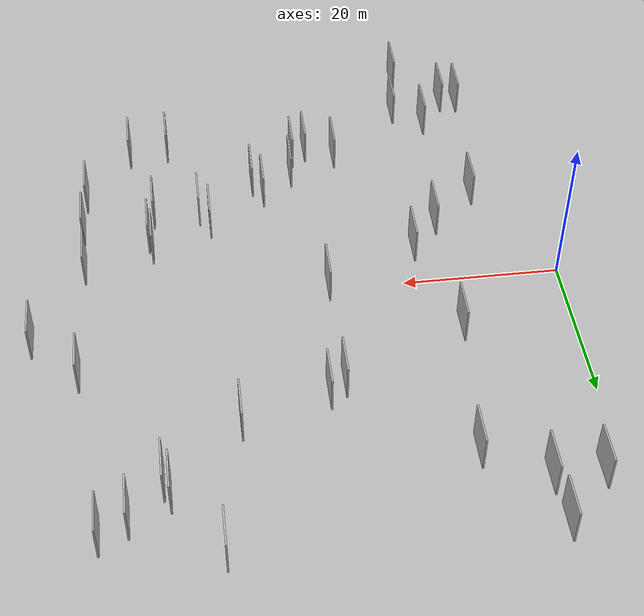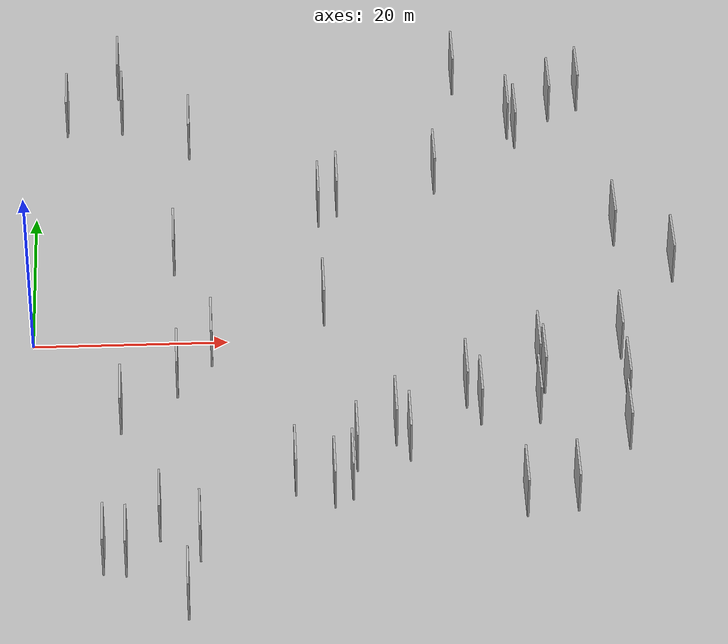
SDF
<?xml version="1.0" encoding="utf-8"?>

<sdf version="1.6">

   <world name="default">

      <gui fullscreen="0">

         <camera name="user_camera">

            <pose>-15 0 4.57585 0 0 0</pose>

            <view_controller>orbit</view_controller>

         </camera>

      </gui>

      <scene>

         <sky>

           <clouds>

             <speed>12</speed>

           </clouds>

         </sky>

         <ambient>0.4 0.4 0.4 1</ambient>

         <background>0.7 0.7 0.7 1</background>

         <shadows>1</shadows>

      </scene>

      <gravity>0 0 -9.8066</gravity>

      <magnetic_field>6e-06 2.3e-05 -4.2e-05</magnetic_field>

      <physics default="0" name="default_physics" type="ode">

         <ode>

            <solver>

               <type>quick</type>

               <iters>10</iters>

               <sor>1.0</sor>

               <use_dynamic_moi_rescaling>0</use_dynamic_moi_rescaling>

            </solver>

            <constraints>

               <cfm>0</cfm>

               <erp>0.2</erp>

               <contact_max_correcting_vel>100</contact_max_correcting_vel>

               <contact_surface_layer>0.001</contact_surface_layer>

            </constraints>

         </ode>

         <max_step_size>0.004</max_step_size>

         <real_time_factor>1</real_time_factor>

         <real_time_update_rate>250</real_time_update_rate>

      </physics>

      <light name="sun" type="directional">

         <cast_shadows>1</cast_shadows>

         <pose>0 0 10 0 0 0</pose>

         <diffuse>0.8 0.8 0.8 1</diffuse>

         <specular>0.2 0.2 0.2 1</specular>

         <attenuation>

            <range>1000</range>

            <constant>0.9</constant>

            <linear>0.01</linear>

            <quadratic>0.001</quadratic>

         </attenuation>

         <direction>-0.5 0.1 -0.9</direction>

      </light>

      <include>

         <name>ground_plane_1</name>

         <uri>model://HANNAS_ground_plane</uri>

         <pose>0 0 0  0 0 0</pose>

      </include>

      <include>

         <name>ground_plane_2</name>

         <uri>model://HANNAS_ground_plane</uri>

         <pose>100 0 0  0 0 0</pose>

      </include>

      <model name="HANNAS_wall_1">

         <static>1</static>

         <pose frame="">26.3463 -22.8614 2.5 0.000000 0.000000 1.570796</pose>

         <link name="link">

            <pose frame="">0 0 2.50 0 0 0</pose>

            <collision name="collision">

               <geometry>

                  <box>

                     <size>5.00 0.2 5.00</size>

                  </box>

               </geometry>

               <max_contacts>10</max_contacts>

               <surface>

                  <contact>

                     <ode/>

                  </contact>

                  <bounce/>

                  <friction>

                     <torsional>

                        <ode/>

                     </torsional>

                     <ode/>

                  </friction>

               </surface>

            </collision>

            <visual name="visual">

               <cast_shadows>0</cast_shadows>

               <geometry>

                  <box>

                     <size>5.00 0.2 5.00</size>

                  </box>

               </geometry>

               <material>

                  <script>

                     <uri>model://HANNAS_wall/materials/scripts</uri>

                     <uri>model://HANNAS_wall/materials/textures</uri>

                     <name>vrc/HANNAS_wall</name>

                  </script>

               </material>

            </visual>

            <self_collide>0</self_collide>

            <enable_wind>0</enable_wind>

            <kinematic>0</kinematic>

         </link>

      </model>

      <model name="HANNAS_wall_2">

         <static>1</static>

         <pose frame="">45.1819 -13.5041 2.5 0.000000 0.000000 1.570796</pose>

         <link name="link">

            <pose frame="">0 0 2.50 0 0 0</pose>

            <collision name="collision">

               <geometry>

                  <box>

                     <size>5.00 0.2 5.00</size>

                  </box>

               </geometry>

               <max_contacts>10</max_contacts>

               <surface>

                  <contact>

                     <ode/>

                  </contact>

                  <bounce/>

                  <friction>

                     <torsional>

                        <ode/>

                     </torsional>

                     <ode/>

                  </friction>

               </surface>

            </collision>

            <visual name="visual">

               <cast_shadows>0</cast_shadows>

               <geometry>

                  <box>

                     <size>5.00 0.2 5.00</size>

                  </box>

               </geometry>

               <material>

                  <script>

                     <uri>model://HANNAS_wall/materials/scripts</uri>

                     <uri>model://HANNAS_wall/materials/textures</uri>

                     <name>vrc/HANNAS_wall</name>

                  </script>

               </material>

            </visual>

            <self_collide>0</self_collide>

            <enable_wind>0</enable_wind>

            <kinematic>0</kinematic>

         </link>

      </model>

      <model name="HANNAS_wall_3">

         <static>1</static>

         <pose frame="">16.3982 29.0219 2.5 0.000000 0.000000 1.570796</pose>

         <link name="link">

            <pose frame="">0 0 2.50 0 0 0</pose>

            <collision name="collision">

               <geometry>

                  <box>

                     <size>5.00 0.2 5.00</size>

                  </box>

               </geometry>

               <max_contacts>10</max_contacts>

               <surface>

                  <contact>

                     <ode/>

                  </contact>

                  <bounce/>

                  <friction>

                     <torsional>

                        <ode/>

                     </torsional>

                     <ode/>

                  </friction>

               </surface>

            </collision>

            <visual name="visual">

               <cast_shadows>0</cast_shadows>

               <geometry>

                  <box>

                     <size>5.00 0.2 5.00</size>

                  </box>

               </geometry>

               <material>

                  <script>

                     <uri>model://HANNAS_wall/materials/scripts</uri>

                     <uri>model://HANNAS_wall/materials/textures</uri>

                     <name>vrc/HANNAS_wall</name>

                  </script>

               </material>

            </visual>

            <self_collide>0</self_collide>

            <enable_wind>0</enable_wind>

            <kinematic>0</kinematic>

         </link>

      </model>

      <model name="HANNAS_wall_4">

         <static>1</static>

         <pose frame="">51.0853 -13.5674 2.5 0.000000 0.000000 1.570796</pose>

         <link name="link">

            <pose frame="">0 0 2.50 0 0 0</pose>

            <collision name="collision">

               <geometry>

                  <box>

                     <size>5.00 0.2 5.00</size>

                  </box>

               </geometry>

               <max_contacts>10</max_contacts>

               <surface>

                  <contact>

                     <ode/>

                  </contact>

                  <bounce/>

                  <friction>

                     <torsional>

                        <ode/>

                     </torsional>

                     <ode/>

                  </friction>

               </surface>

            </collision>

            <visual name="visual">

               <cast_shadows>0</cast_shadows>

               <geometry>

                  <box>

                     <size>5.00 0.2 5.00</size>

                  </box>

               </geometry>

               <material>

                  <script>

                     <uri>model://HANNAS_wall/materials/scripts</uri>

                     <uri>model://HANNAS_wall/materials/textures</uri>

                     <name>vrc/HANNAS_wall</name>

                  </script>

               </material>

            </visual>

            <self_collide>0</self_collide>

            <enable_wind>0</enable_wind>

            <kinematic>0</kinematic>

         </link>

      </model>

      <model name="HANNAS_wall_5">

         <static>1</static>

         <pose frame="">66.3828 7.2035 2.5 0.000000 0.000000 1.570796</pose>

         <link name="link">

            <pose frame="">0 0 2.50 0 0 0</pose>

            <collision name="collision">

               <geometry>

                  <box>

                     <size>5.00 0.2 5.00</size>

                  </box>

               </geometry>

               <max_contacts>10</max_contacts>

               <surface>

                  <contact>

                     <ode/>

                  </contact>

                  <bounce/>

                  <friction>

                     <torsional>

                        <ode/>

                     </torsional>

                     <ode/>

                  </friction>

               </surface>

            </collision>

            <visual name="visual">

               <cast_shadows>0</cast_shadows>

               <geometry>

                  <box>

                     <size>5.00 0.2 5.00</size>

                  </box>

               </geometry>

               <material>

                  <script>

                     <uri>model://HANNAS_wall/materials/scripts</uri>

                     <uri>model://HANNAS_wall/materials/textures</uri>

                     <name>vrc/HANNAS_wall</name>

                  </script>

               </material>

            </visual>

            <self_collide>0</self_collide>

            <enable_wind>0</enable_wind>

            <kinematic>0</kinematic>

         </link>

      </model>

      <model name="HANNAS_wall_6">

         <static>1</static>

         <pose frame="">31.9685 -23.6078 2.5 0.000000 0.000000 1.570796</pose>

         <link name="link">

            <pose frame="">0 0 2.50 0 0 0</pose>

            <collision name="collision">

               <geometry>

                  <box>

                     <size>5.00 0.2 5.00</size>

                  </box>

               </geometry>

               <max_contacts>10</max_contacts>

               <surface>

                  <contact>

                     <ode/>

                  </contact>

                  <bounce/>

                  <friction>

                     <torsional>

                        <ode/>

                     </torsional>

                     <ode/>

                  </friction>

               </surface>

            </collision>

            <visual name="visual">

               <cast_shadows>0</cast_shadows>

               <geometry>

                  <box>

                     <size>5.00 0.2 5.00</size>

                  </box>

               </geometry>

               <material>

                  <script>

                     <uri>model://HANNAS_wall/materials/scripts</uri>

                     <uri>model://HANNAS_wall/materials/textures</uri>

                     <name>vrc/HANNAS_wall</name>

                  </script>

               </material>

            </visual>

            <self_collide>0</self_collide>

            <enable_wind>0</enable_wind>

            <kinematic>0</kinematic>

         </link>

      </model>

      <model name="HANNAS_wall_7">

         <static>1</static>

         <pose frame="">15.6620 -39.1368 2.5 0.000000 0.000000 1.570796</pose>

         <link name="link">

            <pose frame="">0 0 2.50 0 0 0</pose>

            <collision name="collision">

               <geometry>

                  <box>

                     <size>5.00 0.2 5.00</size>

                  </box>

               </geometry>

               <max_contacts>10</max_contacts>

               <surface>

                  <contact>

                     <ode/>

                  </contact>

                  <bounce/>

                  <friction>

                     <torsional>

                        <ode/>

                     </torsional>

                     <ode/>

                  </friction>

               </surface>

            </collision>

            <visual name="visual">

               <cast_shadows>0</cast_shadows>

               <geometry>

                  <box>

                     <size>5.00 0.2 5.00</size>

                  </box>

               </geometry>

               <material>

                  <script>

                     <uri>model://HANNAS_wall/materials/scripts</uri>

                     <uri>model://HANNAS_wall/materials/textures</uri>

                     <name>vrc/HANNAS_wall</name>

                  </script>

               </material>

            </visual>

            <self_collide>0</self_collide>

            <enable_wind>0</enable_wind>

            <kinematic>0</kinematic>

         </link>

      </model>

      <model name="HANNAS_wall_8">

         <static>1</static>

         <pose frame="">59.7446 -17.5631 2.5 0.000000 0.000000 1.570796</pose>

         <link name="link">

            <pose frame="">0 0 2.50 0 0 0</pose>

            <collision name="collision">

               <geometry>

                  <box>

                     <size>5.00 0.2 5.00</size>

                  </box>

               </geometry>

               <max_contacts>10</max_contacts>

               <surface>

                  <contact>

                     <ode/>

                  </contact>

                  <bounce/>

                  <friction>

                     <torsional>

                        <ode/>

                     </torsional>

                     <ode/>

                  </friction>

               </surface>

            </collision>

            <visual name="visual">

               <cast_shadows>0</cast_shadows>

               <geometry>

                  <box>

                     <size>5.00 0.2 5.00</size>

                  </box>

               </geometry>

               <material>

                  <script>

                     <uri>model://HANNAS_wall/materials/scripts</uri>

                     <uri>model://HANNAS_wall/materials/textures</uri>

                     <name>vrc/HANNAS_wall</name>

                  </script>

               </material>

            </visual>

            <self_collide>0</self_collide>

            <enable_wind>0</enable_wind>

            <kinematic>0</kinematic>

         </link>

      </model>

      <model name="HANNAS_wall_9">

         <static>1</static>

         <pose frame="">29.9235 17.3483 2.5 0.000000 0.000000 1.570796</pose>

         <link name="link">

            <pose frame="">0 0 2.50 0 0 0</pose>

            <collision name="collision">

               <geometry>

                  <box>

                     <size>5.00 0.2 5.00</size>

                  </box>

               </geometry>

               <max_contacts>10</max_contacts>

               <surface>

                  <contact>

                     <ode/>

                  </contact>

                  <bounce/>

                  <friction>

                     <torsional>

                        <ode/>

                     </torsional>

                     <ode/>

                  </friction>

               </surface>

            </collision>

            <visual name="visual">

               <cast_shadows>0</cast_shadows>

               <geometry>

                  <box>

                     <size>5.00 0.2 5.00</size>

                  </box>

               </geometry>

               <material>

                  <script>

                     <uri>model://HANNAS_wall/materials/scripts</uri>

                     <uri>model://HANNAS_wall/materials/textures</uri>

                     <name>vrc/HANNAS_wall</name>

                  </script>

               </material>

            </visual>

            <self_collide>0</self_collide>

            <enable_wind>0</enable_wind>

            <kinematic>0</kinematic>

         </link>

      </model>

      <model name="HANNAS_wall_10">

         <static>1</static>

         <pose frame="">60.0062 -4.3715 2.5 0.000000 0.000000 1.570796</pose>

         <link name="link">

            <pose frame="">0 0 2.50 0 0 0</pose>

            <collision name="collision">

               <geometry>

                  <box>

                     <size>5.00 0.2 5.00</size>

                  </box>

               </geometry>

               <max_contacts>10</max_contacts>

               <surface>

                  <contact>

                     <ode/>

                  </contact>

                  <bounce/>

                  <friction>

                     <torsional>

                        <ode/>

                     </torsional>

                     <ode/>

                  </friction>

               </surface>

            </collision>

            <visual name="visual">

               <cast_shadows>0</cast_shadows>

               <geometry>

                  <box>

                     <size>5.00 0.2 5.00</size>

                  </box>

               </geometry>

               <material>

                  <script>

                     <uri>model://HANNAS_wall/materials/scripts</uri>

                     <uri>model://HANNAS_wall/materials/textures</uri>

                     <name>vrc/HANNAS_wall</name>

                  </script>

               </material>

            </visual>

            <self_collide>0</self_collide>

            <enable_wind>0</enable_wind>

            <kinematic>0</kinematic>

         </link>

      </model>

      <model name="HANNAS_wall_11">

         <static>1</static>

         <pose frame="">50.7910 31.0676 2.5 0.000000 0.000000 1.570796</pose>

         <link name="link">

            <pose frame="">0 0 2.50 0 0 0</pose>

            <collision name="collision">

               <geometry>

                  <box>

                     <size>5.00 0.2 5.00</size>

                  </box>

               </geometry>

               <max_contacts>10</max_contacts>

               <surface>

                  <contact>

                     <ode/>

                  </contact>

                  <bounce/>

                  <friction>

                     <torsional>

                        <ode/>

                     </torsional>

                     <ode/>

                  </friction>

               </surface>

            </collision>

            <visual name="visual">

               <cast_shadows>0</cast_shadows>

               <geometry>

                  <box>

                     <size>5.00 0.2 5.00</size>

                  </box>

               </geometry>

               <material>

                  <script>

                     <uri>model://HANNAS_wall/materials/scripts</uri>

                     <uri>model://HANNAS_wall/materials/textures</uri>

                     <name>vrc/HANNAS_wall</name>

                  </script>

               </material>

            </visual>

            <self_collide>0</self_collide>

            <enable_wind>0</enable_wind>

            <kinematic>0</kinematic>

         </link>

      </model>

      <model name="HANNAS_wall_12">

         <static>1</static>

         <pose frame="">45.3002 38.9370 2.5 0.000000 0.000000 1.570796</pose>

         <link name="link">

            <pose frame="">0 0 2.50 0 0 0</pose>

            <collision name="collision">

               <geometry>

                  <box>

                     <size>5.00 0.2 5.00</size>

                  </box>

               </geometry>

               <max_contacts>10</max_contacts>

               <surface>

                  <contact>

                     <ode/>

                  </contact>

                  <bounce/>

                  <friction>

                     <torsional>

                        <ode/>

                     </torsional>

                     <ode/>

                  </friction>

               </surface>

            </collision>

            <visual name="visual">

               <cast_shadows>0</cast_shadows>

               <geometry>

                  <box>

                     <size>5.00 0.2 5.00</size>

                  </box>

               </geometry>

               <material>

                  <script>

                     <uri>model://HANNAS_wall/materials/scripts</uri>

                     <uri>model://HANNAS_wall/materials/textures</uri>

                     <name>vrc/HANNAS_wall</name>

                  </script>

               </material>

            </visual>

            <self_collide>0</self_collide>

            <enable_wind>0</enable_wind>

            <kinematic>0</kinematic>

         </link>

      </model>

      <model name="HANNAS_wall_13">

         <static>1</static>

         <pose frame="">14.6495 10.2471 2.5 0.000000 0.000000 1.570796</pose>

         <link name="link">

            <pose frame="">0 0 2.50 0 0 0</pose>

            <collision name="collision">

               <geometry>

                  <box>

                     <size>5.00 0.2 5.00</size>

                  </box>

               </geometry>

               <max_contacts>10</max_contacts>

               <surface>

                  <contact>

                     <ode/>

                  </contact>

                  <bounce/>

                  <friction>

                     <torsional>

                        <ode/>

                     </torsional>

                     <ode/>

                  </friction>

               </surface>

            </collision>

            <visual name="visual">

               <cast_shadows>0</cast_shadows>

               <geometry>

                  <box>

                     <size>5.00 0.2 5.00</size>

                  </box>

               </geometry>

               <material>

                  <script>

                     <uri>model://HANNAS_wall/materials/scripts</uri>

                     <uri>model://HANNAS_wall/materials/textures</uri>

                     <name>vrc/HANNAS_wall</name>

                  </script>

               </material>

            </visual>

            <self_collide>0</self_collide>

            <enable_wind>0</enable_wind>

            <kinematic>0</kinematic>

         </link>

      </model>

      <model name="HANNAS_wall_14">

         <static>1</static>

         <pose frame="">48.8698 -26.5970 2.5 0.000000 0.000000 1.570796</pose>

         <link name="link">

            <pose frame="">0 0 2.50 0 0 0</pose>

            <collision name="collision">

               <geometry>

                  <box>

                     <size>5.00 0.2 5.00</size>

                  </box>

               </geometry>

               <max_contacts>10</max_contacts>

               <surface>

                  <contact>

                     <ode/>

                  </contact>

                  <bounce/>

                  <friction>

                     <torsional>

                        <ode/>

                     </torsional>

                     <ode/>

                  </friction>

               </surface>

            </collision>

            <visual name="visual">

               <cast_shadows>0</cast_shadows>

               <geometry>

                  <box>

                     <size>5.00 0.2 5.00</size>

                  </box>

               </geometry>

               <material>

                  <script>

                     <uri>model://HANNAS_wall/materials/scripts</uri>

                     <uri>model://HANNAS_wall/materials/textures</uri>

                     <name>vrc/HANNAS_wall</name>

                  </script>

               </material>

            </visual>

            <self_collide>0</self_collide>

            <enable_wind>0</enable_wind>

            <kinematic>0</kinematic>

         </link>

      </model>

      <model name="HANNAS_wall_15">

         <static>1</static>

         <pose frame="">12.9881 -28.6049 2.5 0.000000 0.000000 1.570796</pose>

         <link name="link">

            <pose frame="">0 0 2.50 0 0 0</pose>

            <collision name="collision">

               <geometry>

                  <box>

                     <size>5.00 0.2 5.00</size>

                  </box>

               </geometry>

               <max_contacts>10</max_contacts>

               <surface>

                  <contact>

                     <ode/>

                  </contact>

                  <bounce/>

                  <friction>

                     <torsional>

                        <ode/>

                     </torsional>

                     <ode/>

                  </friction>

               </surface>

            </collision>

            <visual name="visual">

               <cast_shadows>0</cast_shadows>

               <geometry>

                  <box>

                     <size>5.00 0.2 5.00</size>

                  </box>

               </geometry>

               <material>

                  <script>

                     <uri>model://HANNAS_wall/materials/scripts</uri>

                     <uri>model://HANNAS_wall/materials/textures</uri>

                     <name>vrc/HANNAS_wall</name>

                  </script>

               </material>

            </visual>

            <self_collide>0</self_collide>

            <enable_wind>0</enable_wind>

            <kinematic>0</kinematic>

         </link>

      </model>

      <model name="HANNAS_wall_16">

         <static>1</static>

         <pose frame="">9.2071 33.3859 2.5 0.000000 0.000000 1.570796</pose>

         <link name="link">

            <pose frame="">0 0 2.50 0 0 0</pose>

            <collision name="collision">

               <geometry>

                  <box>

                     <size>5.00 0.2 5.00</size>

                  </box>

               </geometry>

               <max_contacts>10</max_contacts>

               <surface>

                  <contact>

                     <ode/>

                  </contact>

                  <bounce/>

                  <friction>

                     <torsional>

                        <ode/>

                     </torsional>

                     <ode/>

                  </friction>

               </surface>

            </collision>

            <visual name="visual">

               <cast_shadows>0</cast_shadows>

               <geometry>

                  <box>

                     <size>5.00 0.2 5.00</size>

                  </box>

               </geometry>

               <material>

                  <script>

                     <uri>model://HANNAS_wall/materials/scripts</uri>

                     <uri>model://HANNAS_wall/materials/textures</uri>

                     <name>vrc/HANNAS_wall</name>

                  </script>

               </material>

            </visual>

            <self_collide>0</self_collide>

            <enable_wind>0</enable_wind>

            <kinematic>0</kinematic>

         </link>

      </model>

      <model name="HANNAS_wall_17">

         <static>1</static>

         <pose frame="">60.1707 -11.4295 2.5 0.000000 0.000000 1.570796</pose>

         <link name="link">

            <pose frame="">0 0 2.50 0 0 0</pose>

            <collision name="collision">

               <geometry>

                  <box>

                     <size>5.00 0.2 5.00</size>

                  </box>

               </geometry>

               <max_contacts>10</max_contacts>

               <surface>

                  <contact>

                     <ode/>

                  </contact>

                  <bounce/>

                  <friction>

                     <torsional>

                        <ode/>

                     </torsional>

                     <ode/>

                  </friction>

               </surface>

            </collision>

            <visual name="visual">

               <cast_shadows>0</cast_shadows>

               <geometry>

                  <box>

                     <size>5.00 0.2 5.00</size>

                  </box>

               </geometry>

               <material>

                  <script>

                     <uri>model://HANNAS_wall/materials/scripts</uri>

                     <uri>model://HANNAS_wall/materials/textures</uri>

                     <name>vrc/HANNAS_wall</name>

                  </script>

               </material>

            </visual>

            <self_collide>0</self_collide>

            <enable_wind>0</enable_wind>

            <kinematic>0</kinematic>

         </link>

      </model>

      <model name="HANNAS_wall_18">

         <static>1</static>

         <pose frame="">9.1684 -13.4231 2.5 0.000000 0.000000 1.570796</pose>

         <link name="link">

            <pose frame="">0 0 2.50 0 0 0</pose>

            <collision name="collision">

               <geometry>

                  <box>

                     <size>5.00 0.2 5.00</size>

                  </box>

               </geometry>

               <max_contacts>10</max_contacts>

               <surface>

                  <contact>

                     <ode/>

                  </contact>

                  <bounce/>

                  <friction>

                     <torsional>

                        <ode/>

                     </torsional>

                     <ode/>

                  </friction>

               </surface>

            </collision>

            <visual name="visual">

               <cast_shadows>0</cast_shadows>

               <geometry>

                  <box>

                     <size>5.00 0.2 5.00</size>

                  </box>

               </geometry>

               <material>

                  <script>

                     <uri>model://HANNAS_wall/materials/scripts</uri>

                     <uri>model://HANNAS_wall/materials/textures</uri>

                     <name>vrc/HANNAS_wall</name>

                  </script>

               </material>

            </visual>

            <self_collide>0</self_collide>

            <enable_wind>0</enable_wind>

            <kinematic>0</kinematic>

         </link>

      </model>

      <model name="HANNAS_wall_19">

         <static>1</static>

         <pose frame="">7.5199 -32.9563 2.5 0.000000 0.000000 1.570796</pose>

         <link name="link">

            <pose frame="">0 0 2.50 0 0 0</pose>

            <collision name="collision">

               <geometry>

                  <box>

                     <size>5.00 0.2 5.00</size>

                  </box>

               </geometry>

               <max_contacts>10</max_contacts>

               <surface>

                  <contact>

                     <ode/>

                  </contact>

                  <bounce/>

                  <friction>

                     <torsional>

                        <ode/>

                     </torsional>

                     <ode/>

                  </friction>

               </surface>

            </collision>

            <visual name="visual">

               <cast_shadows>0</cast_shadows>

               <geometry>

                  <box>

                     <size>5.00 0.2 5.00</size>

                  </box>

               </geometry>

               <material>

                  <script>

                     <uri>model://HANNAS_wall/materials/scripts</uri>

                     <uri>model://HANNAS_wall/materials/textures</uri>

                     <name>vrc/HANNAS_wall</name>

                  </script>

               </material>

            </visual>

            <self_collide>0</self_collide>

            <enable_wind>0</enable_wind>

            <kinematic>0</kinematic>

         </link>

      </model>

      <model name="HANNAS_wall_20">

         <static>1</static>

         <pose frame="">51.4443 -7.1435 2.5 0.000000 0.000000 1.570796</pose>

         <link name="link">

            <pose frame="">0 0 2.50 0 0 0</pose>

            <collision name="collision">

               <geometry>

                  <box>

                     <size>5.00 0.2 5.00</size>

                  </box>

               </geometry>

               <max_contacts>10</max_contacts>

               <surface>

                  <contact>

                     <ode/>

                  </contact>

                  <bounce/>

                  <friction>

                     <torsional>

                        <ode/>

                     </torsional>

                     <ode/>

                  </friction>

               </surface>

            </collision>

            <visual name="visual">

               <cast_shadows>0</cast_shadows>

               <geometry>

                  <box>

                     <size>5.00 0.2 5.00</size>

                  </box>

               </geometry>

               <material>

                  <script>

                     <uri>model://HANNAS_wall/materials/scripts</uri>

                     <uri>model://HANNAS_wall/materials/textures</uri>

                     <name>vrc/HANNAS_wall</name>

                  </script>

               </material>

            </visual>

            <self_collide>0</self_collide>

            <enable_wind>0</enable_wind>

            <kinematic>0</kinematic>

         </link>

      </model>

      <model name="HANNAS_wall_21">

         <static>1</static>

         <pose frame="">37.8477 -18.3822 2.5 0.000000 0.000000 1.570796</pose>

         <link name="link">

            <pose frame="">0 0 2.50 0 0 0</pose>

            <collision name="collision">

               <geometry>

                  <box>

                     <size>5.00 0.2 5.00</size>

                  </box>

               </geometry>

               <max_contacts>10</max_contacts>

               <surface>

                  <contact>

                     <ode/>

                  </contact>

                  <bounce/>

                  <friction>

                     <torsional>

                        <ode/>

                     </torsional>

                     <ode/>

                  </friction>

               </surface>

            </collision>

            <visual name="visual">

               <cast_shadows>0</cast_shadows>

               <geometry>

                  <box>

                     <size>5.00 0.2 5.00</size>

                  </box>

               </geometry>

               <material>

                  <script>

                     <uri>model://HANNAS_wall/materials/scripts</uri>

                     <uri>model://HANNAS_wall/materials/textures</uri>

                     <name>vrc/HANNAS_wall</name>

                  </script>

               </material>

            </visual>

            <self_collide>0</self_collide>

            <enable_wind>0</enable_wind>

            <kinematic>0</kinematic>

         </link>

      </model>

      <model name="HANNAS_wall_22">

         <static>1</static>

         <pose frame="">51.4952 29.5075 2.5 0.000000 0.000000 1.570796</pose>

         <link name="link">

            <pose frame="">0 0 2.50 0 0 0</pose>

            <collision name="collision">

               <geometry>

                  <box>

                     <size>5.00 0.2 5.00</size>

                  </box>

               </geometry>

               <max_contacts>10</max_contacts>

               <surface>

                  <contact>

                     <ode/>

                  </contact>

                  <bounce/>

                  <friction>

                     <torsional>

                        <ode/>

                     </torsional>

                     <ode/>

                  </friction>

               </surface>

            </collision>

            <visual name="visual">

               <cast_shadows>0</cast_shadows>

               <geometry>

                  <box>

                     <size>5.00 0.2 5.00</size>

                  </box>

               </geometry>

               <material>

                  <script>

                     <uri>model://HANNAS_wall/materials/scripts</uri>

                     <uri>model://HANNAS_wall/materials/textures</uri>

                     <name>vrc/HANNAS_wall</name>

                  </script>

               </material>

            </visual>

            <self_collide>0</self_collide>

            <enable_wind>0</enable_wind>

            <kinematic>0</kinematic>

         </link>

      </model>

      <model name="HANNAS_wall_23">

         <static>1</static>

         <pose frame="">14.8369 -8.3337 2.5 0.000000 0.000000 1.570796</pose>

         <link name="link">

            <pose frame="">0 0 2.50 0 0 0</pose>

            <collision name="collision">

               <geometry>

                  <box>

                     <size>5.00 0.2 5.00</size>

                  </box>

               </geometry>

               <max_contacts>10</max_contacts>

               <surface>

                  <contact>

                     <ode/>

                  </contact>

                  <bounce/>

                  <friction>

                     <torsional>

                        <ode/>

                     </torsional>

                     <ode/>

                  </friction>

               </surface>

            </collision>

            <visual name="visual">

               <cast_shadows>0</cast_shadows>

               <geometry>

                  <box>

                     <size>5.00 0.2 5.00</size>

                  </box>

               </geometry>

               <material>

                  <script>

                     <uri>model://HANNAS_wall/materials/scripts</uri>

                     <uri>model://HANNAS_wall/materials/textures</uri>

                     <name>vrc/HANNAS_wall</name>

                  </script>

               </material>

            </visual>

            <self_collide>0</self_collide>

            <enable_wind>0</enable_wind>

            <kinematic>0</kinematic>

         </link>

      </model>

      <model name="HANNAS_wall_24">

         <static>1</static>

         <pose frame="">29.9625 1.8071 2.5 0.000000 0.000000 1.570796</pose>

         <link name="link">

            <pose frame="">0 0 2.50 0 0 0</pose>

            <collision name="collision">

               <geometry>

                  <box>

                     <size>5.00 0.2 5.00</size>

                  </box>

               </geometry>

               <max_contacts>10</max_contacts>

               <surface>

                  <contact>

                     <ode/>

                  </contact>

                  <bounce/>

                  <friction>

                     <torsional>

                        <ode/>

                     </torsional>

                     <ode/>

                  </friction>

               </surface>

            </collision>

            <visual name="visual">

               <cast_shadows>0</cast_shadows>

               <geometry>

                  <box>

                     <size>5.00 0.2 5.00</size>

                  </box>

               </geometry>

               <material>

                  <script>

                     <uri>model://HANNAS_wall/materials/scripts</uri>

                     <uri>model://HANNAS_wall/materials/textures</uri>

                     <name>vrc/HANNAS_wall</name>

                  </script>

               </material>

            </visual>

            <self_collide>0</self_collide>

            <enable_wind>0</enable_wind>

            <kinematic>0</kinematic>

         </link>

      </model>

      <model name="HANNAS_wall_25">

         <static>1</static>

         <pose frame="">3.3071 33.2354 2.5 0.000000 0.000000 1.570796</pose>

         <link name="link">

            <pose frame="">0 0 2.50 0 0 0</pose>

            <collision name="collision">

               <geometry>

                  <box>

                     <size>5.00 0.2 5.00</size>

                  </box>

               </geometry>

               <max_contacts>10</max_contacts>

               <surface>

                  <contact>

                     <ode/>

                  </contact>

                  <bounce/>

                  <friction>

                     <torsional>

                        <ode/>

                     </torsional>

                     <ode/>

                  </friction>

               </surface>

            </collision>

            <visual name="visual">

               <cast_shadows>0</cast_shadows>

               <geometry>

                  <box>

                     <size>5.00 0.2 5.00</size>

                  </box>

               </geometry>

               <material>

                  <script>

                     <uri>model://HANNAS_wall/materials/scripts</uri>

                     <uri>model://HANNAS_wall/materials/textures</uri>

                     <name>vrc/HANNAS_wall</name>

                  </script>

               </material>

            </visual>

            <self_collide>0</self_collide>

            <enable_wind>0</enable_wind>

            <kinematic>0</kinematic>

         </link>

      </model>

      <model name="HANNAS_wall_26">

         <static>1</static>

         <pose frame="">31.9212 18.9102 2.5 0.000000 0.000000 1.570796</pose>

         <link name="link">

            <pose frame="">0 0 2.50 0 0 0</pose>

            <collision name="collision">

               <geometry>

                  <box>

                     <size>5.00 0.2 5.00</size>

                  </box>

               </geometry>

               <max_contacts>10</max_contacts>

               <surface>

                  <contact>

                     <ode/>

                  </contact>

                  <bounce/>

                  <friction>

                     <torsional>

                        <ode/>

                     </torsional>

                     <ode/>

                  </friction>

               </surface>

            </collision>

            <visual name="visual">

               <cast_shadows>0</cast_shadows>

               <geometry>

                  <box>

                     <size>5.00 0.2 5.00</size>

                  </box>

               </geometry>

               <material>

                  <script>

                     <uri>model://HANNAS_wall/materials/scripts</uri>

                     <uri>model://HANNAS_wall/materials/textures</uri>

                     <name>vrc/HANNAS_wall</name>

                  </script>

               </material>

            </visual>

            <self_collide>0</self_collide>

            <enable_wind>0</enable_wind>

            <kinematic>0</kinematic>

         </link>

      </model>

      <model name="HANNAS_wall_27">

         <static>1</static>

         <pose frame="">9.7199 -33.2839 2.5 0.000000 0.000000 1.570796</pose>

         <link name="link">

            <pose frame="">0 0 2.50 0 0 0</pose>

            <collision name="collision">

               <geometry>

                  <box>

                     <size>5.00 0.2 5.00</size>

                  </box>

               </geometry>

               <max_contacts>10</max_contacts>

               <surface>

                  <contact>

                     <ode/>

                  </contact>

                  <bounce/>

                  <friction>

                     <torsional>

                        <ode/>

                     </torsional>

                     <ode/>

                  </friction>

               </surface>

            </collision>

            <visual name="visual">

               <cast_shadows>0</cast_shadows>

               <geometry>

                  <box>

                     <size>5.00 0.2 5.00</size>

                  </box>

               </geometry>

               <material>

                  <script>

                     <uri>model://HANNAS_wall/materials/scripts</uri>

                     <uri>model://HANNAS_wall/materials/textures</uri>

                     <name>vrc/HANNAS_wall</name>

                  </script>

               </material>

            </visual>

            <self_collide>0</self_collide>

            <enable_wind>0</enable_wind>

            <kinematic>0</kinematic>

         </link>

      </model>

      <model name="HANNAS_wall_28">

         <static>1</static>

         <pose frame="">55.4301 33.8588 2.5 0.000000 0.000000 1.570796</pose>

         <link name="link">

            <pose frame="">0 0 2.50 0 0 0</pose>

            <collision name="collision">

               <geometry>

                  <box>

                     <size>5.00 0.2 5.00</size>

                  </box>

               </geometry>

               <max_contacts>10</max_contacts>

               <surface>

                  <contact>

                     <ode/>

                  </contact>

                  <bounce/>

                  <friction>

                     <torsional>

                        <ode/>

                     </torsional>

                     <ode/>

                  </friction>

               </surface>

            </collision>

            <visual name="visual">

               <cast_shadows>0</cast_shadows>

               <geometry>

                  <box>

                     <size>5.00 0.2 5.00</size>

                  </box>

               </geometry>

               <material>

                  <script>

                     <uri>model://HANNAS_wall/materials/scripts</uri>

                     <uri>model://HANNAS_wall/materials/textures</uri>

                     <name>vrc/HANNAS_wall</name>

                  </script>

               </material>

            </visual>

            <self_collide>0</self_collide>

            <enable_wind>0</enable_wind>

            <kinematic>0</kinematic>

         </link>

      </model>

      <model name="HANNAS_wall_29">

         <static>1</static>

         <pose frame="">18.3645 -3.8008 2.5 0.000000 0.000000 1.570796</pose>

         <link name="link">

            <pose frame="">0 0 2.50 0 0 0</pose>

            <collision name="collision">

               <geometry>

                  <box>

                     <size>5.00 0.2 5.00</size>

                  </box>

               </geometry>

               <max_contacts>10</max_contacts>

               <surface>

                  <contact>

                     <ode/>

                  </contact>

                  <bounce/>

                  <friction>

                     <torsional>

                        <ode/>

                     </torsional>

                     <ode/>

                  </friction>

               </surface>

            </collision>

            <visual name="visual">

               <cast_shadows>0</cast_shadows>

               <geometry>

                  <box>

                     <size>5.00 0.2 5.00</size>

                  </box>

               </geometry>

               <material>

                  <script>

                     <uri>model://HANNAS_wall/materials/scripts</uri>

                     <uri>model://HANNAS_wall/materials/textures</uri>

                     <name>vrc/HANNAS_wall</name>

                  </script>

               </material>

            </visual>

            <self_collide>0</self_collide>

            <enable_wind>0</enable_wind>

            <kinematic>0</kinematic>

         </link>

      </model>

      <model name="HANNAS_wall_30">

         <static>1</static>

         <pose frame="">16.8824 -31.4488 2.5 0.000000 0.000000 1.570796</pose>

         <link name="link">

            <pose frame="">0 0 2.50 0 0 0</pose>

            <collision name="collision">

               <geometry>

                  <box>

                     <size>5.00 0.2 5.00</size>

                  </box>

               </geometry>

               <max_contacts>10</max_contacts>

               <surface>

                  <contact>

                     <ode/>

                  </contact>

                  <bounce/>

                  <friction>

                     <torsional>

                        <ode/>

                     </torsional>

                     <ode/>

                  </friction>

               </surface>

            </collision>

            <visual name="visual">

               <cast_shadows>0</cast_shadows>

               <geometry>

                  <box>

                     <size>5.00 0.2 5.00</size>

                  </box>

               </geometry>

               <material>

                  <script>

                     <uri>model://HANNAS_wall/materials/scripts</uri>

                     <uri>model://HANNAS_wall/materials/textures</uri>

                     <name>vrc/HANNAS_wall</name>

                  </script>

               </material>

            </visual>

            <self_collide>0</self_collide>

            <enable_wind>0</enable_wind>

            <kinematic>0</kinematic>

         </link>

      </model>

      <model name="HANNAS_wall_31">

         <static>1</static>

         <pose frame="">8.7586 39.4330 2.5 0.000000 0.000000 1.570796</pose>

         <link name="link">

            <pose frame="">0 0 2.50 0 0 0</pose>

            <collision name="collision">

               <geometry>

                  <box>

                     <size>5.00 0.2 5.00</size>

                  </box>

               </geometry>

               <max_contacts>10</max_contacts>

               <surface>

                  <contact>

                     <ode/>

                  </contact>

                  <bounce/>

                  <friction>

                     <torsional>

                        <ode/>

                     </torsional>

                     <ode/>

                  </friction>

               </surface>

            </collision>

            <visual name="visual">

               <cast_shadows>0</cast_shadows>

               <geometry>

                  <box>

                     <size>5.00 0.2 5.00</size>

                  </box>

               </geometry>

               <material>

                  <script>

                     <uri>model://HANNAS_wall/materials/scripts</uri>

                     <uri>model://HANNAS_wall/materials/textures</uri>

                     <name>vrc/HANNAS_wall</name>

                  </script>

               </material>

            </visual>

            <self_collide>0</self_collide>

            <enable_wind>0</enable_wind>

            <kinematic>0</kinematic>

         </link>

      </model>

      <model name="HANNAS_wall_32">

         <static>1</static>

         <pose frame="">32.5348 -19.6754 2.5 0.000000 0.000000 1.570796</pose>

         <link name="link">

            <pose frame="">0 0 2.50 0 0 0</pose>

            <collision name="collision">

               <geometry>

                  <box>

                     <size>5.00 0.2 5.00</size>

                  </box>

               </geometry>

               <max_contacts>10</max_contacts>

               <surface>

                  <contact>

                     <ode/>

                  </contact>

                  <bounce/>

                  <friction>

                     <torsional>

                        <ode/>

                     </torsional>

                     <ode/>

                  </friction>

               </surface>

            </collision>

            <visual name="visual">

               <cast_shadows>0</cast_shadows>

               <geometry>

                  <box>

                     <size>5.00 0.2 5.00</size>

                  </box>

               </geometry>

               <material>

                  <script>

                     <uri>model://HANNAS_wall/materials/scripts</uri>

                     <uri>model://HANNAS_wall/materials/textures</uri>

                     <name>vrc/HANNAS_wall</name>

                  </script>

               </material>

            </visual>

            <self_collide>0</self_collide>

            <enable_wind>0</enable_wind>

            <kinematic>0</kinematic>

         </link>

      </model>

      <model name="HANNAS_wall_33">

         <static>1</static>

         <pose frame="">51.8716 -9.1086 2.5 0.000000 0.000000 1.570796</pose>

         <link name="link">

            <pose frame="">0 0 2.50 0 0 0</pose>

            <collision name="collision">

               <geometry>

                  <box>

                     <size>5.00 0.2 5.00</size>

                  </box>

               </geometry>

               <max_contacts>10</max_contacts>

               <surface>

                  <contact>

                     <ode/>

                  </contact>

                  <bounce/>

                  <friction>

                     <torsional>

                        <ode/>

                     </torsional>

                     <ode/>

                  </friction>

               </surface>

            </collision>

            <visual name="visual">

               <cast_shadows>0</cast_shadows>

               <geometry>

                  <box>

                     <size>5.00 0.2 5.00</size>

                  </box>

               </geometry>

               <material>

                  <script>

                     <uri>model://HANNAS_wall/materials/scripts</uri>

                     <uri>model://HANNAS_wall/materials/textures</uri>

                     <name>vrc/HANNAS_wall</name>

                  </script>

               </material>

            </visual>

            <self_collide>0</self_collide>

            <enable_wind>0</enable_wind>

            <kinematic>0</kinematic>

         </link>

      </model>

      <model name="HANNAS_wall_34">

         <static>1</static>

         <pose frame="">42.4008 22.2045 2.5 0.000000 0.000000 1.570796</pose>

         <link name="link">

            <pose frame="">0 0 2.50 0 0 0</pose>

            <collision name="collision">

               <geometry>

                  <box>

                     <size>5.00 0.2 5.00</size>

                  </box>

               </geometry>

               <max_contacts>10</max_contacts>

               <surface>

                  <contact>

                     <ode/>

                  </contact>

                  <bounce/>

                  <friction>

                     <torsional>

                        <ode/>

                     </torsional>

                     <ode/>

                  </friction>

               </surface>

            </collision>

            <visual name="visual">

               <cast_shadows>0</cast_shadows>

               <geometry>

                  <box>

                     <size>5.00 0.2 5.00</size>

                  </box>

               </geometry>

               <material>

                  <script>

                     <uri>model://HANNAS_wall/materials/scripts</uri>

                     <uri>model://HANNAS_wall/materials/textures</uri>

                     <name>vrc/HANNAS_wall</name>

                  </script>

               </material>

            </visual>

            <self_collide>0</self_collide>

            <enable_wind>0</enable_wind>

            <kinematic>0</kinematic>

         </link>

      </model>

      <model name="HANNAS_wall_35">

         <static>1</static>

         <pose frame="">53.9236 -26.0248 2.5 0.000000 0.000000 1.570796</pose>

         <link name="link">

            <pose frame="">0 0 2.50 0 0 0</pose>

            <collision name="collision">

               <geometry>

                  <box>

                     <size>5.00 0.2 5.00</size>

                  </box>

               </geometry>

               <max_contacts>10</max_contacts>

               <surface>

                  <contact>

                     <ode/>

                  </contact>

                  <bounce/>

                  <friction>

                     <torsional>

                        <ode/>

                     </torsional>

                     <ode/>

                  </friction>

               </surface>

            </collision>

            <visual name="visual">

               <cast_shadows>0</cast_shadows>

               <geometry>

                  <box>

                     <size>5.00 0.2 5.00</size>

                  </box>

               </geometry>

               <material>

                  <script>

                     <uri>model://HANNAS_wall/materials/scripts</uri>

                     <uri>model://HANNAS_wall/materials/textures</uri>

                     <name>vrc/HANNAS_wall</name>

                  </script>

               </material>

            </visual>

            <self_collide>0</self_collide>

            <enable_wind>0</enable_wind>

            <kinematic>0</kinematic>

         </link>

      </model>

      <model name="HANNAS_wall_36">

         <static>1</static>

         <pose frame="">36.5457 -16.1759 2.5 0.000000 0.000000 1.570796</pose>

         <link name="link">

            <pose frame="">0 0 2.50 0 0 0</pose>

            <collision name="collision">

               <geometry>

                  <box>

                     <size>5.00 0.2 5.00</size>

                  </box>

               </geometry>

               <max_contacts>10</max_contacts>

               <surface>

                  <contact>

                     <ode/>

                  </contact>

                  <bounce/>

                  <friction>

                     <torsional>

                        <ode/>

                     </torsional>

                     <ode/>

                  </friction>

               </surface>

            </collision>

            <visual name="visual">

               <cast_shadows>0</cast_shadows>

               <geometry>

                  <box>

                     <size>5.00 0.2 5.00</size>

                  </box>

               </geometry>

               <material>

                  <script>

                     <uri>model://HANNAS_wall/materials/scripts</uri>

                     <uri>model://HANNAS_wall/materials/textures</uri>

                     <name>vrc/HANNAS_wall</name>

                  </script>

               </material>

            </visual>

            <self_collide>0</self_collide>

            <enable_wind>0</enable_wind>

            <kinematic>0</kinematic>

         </link>

      </model>

      <model name="HANNAS_wall_37">

         <static>1</static>

         <pose frame="">60.7889 13.0609 2.5 0.000000 0.000000 1.570796</pose>

         <link name="link">

            <pose frame="">0 0 2.50 0 0 0</pose>

            <collision name="collision">

               <geometry>

                  <box>

                     <size>5.00 0.2 5.00</size>

                  </box>

               </geometry>

               <max_contacts>10</max_contacts>

               <surface>

                  <contact>

                     <ode/>

                  </contact>

                  <bounce/>

                  <friction>

                     <torsional>

                        <ode/>

                     </torsional>

                     <ode/>

                  </friction>

               </surface>

            </collision>

            <visual name="visual">

               <cast_shadows>0</cast_shadows>

               <geometry>

                  <box>

                     <size>5.00 0.2 5.00</size>

                  </box>

               </geometry>

               <material>

                  <script>

                     <uri>model://HANNAS_wall/materials/scripts</uri>

                     <uri>model://HANNAS_wall/materials/textures</uri>

                     <name>vrc/HANNAS_wall</name>

                  </script>

               </material>

            </visual>

            <self_collide>0</self_collide>

            <enable_wind>0</enable_wind>

            <kinematic>0</kinematic>

         </link>

      </model>

      <model name="HANNAS_wall_38">

         <static>1</static>

         <pose frame="">43.8700 -11.0029 2.5 0.000000 0.000000 1.570796</pose>

         <link name="link">

            <pose frame="">0 0 2.50 0 0 0</pose>

            <collision name="collision">

               <geometry>

                  <box>

                     <size>5.00 0.2 5.00</size>

                  </box>

               </geometry>

               <max_contacts>10</max_contacts>

               <surface>

                  <contact>

                     <ode/>

                  </contact>

                  <bounce/>

                  <friction>

                     <torsional>

                        <ode/>

                     </torsional>

                     <ode/>

                  </friction>

               </surface>

            </collision>

            <visual name="visual">

               <cast_shadows>0</cast_shadows>

               <geometry>

                  <box>

                     <size>5.00 0.2 5.00</size>

                  </box>

               </geometry>

               <material>

                  <script>

                     <uri>model://HANNAS_wall/materials/scripts</uri>

                     <uri>model://HANNAS_wall/materials/textures</uri>

                     <name>vrc/HANNAS_wall</name>

                  </script>

               </material>

            </visual>

            <self_collide>0</self_collide>

            <enable_wind>0</enable_wind>

            <kinematic>0</kinematic>

         </link>

      </model>

      <model name="HANNAS_wall_39">

         <static>1</static>

         <pose frame="">30.1518 -24.6474 2.5 0.000000 0.000000 1.570796</pose>

         <link name="link">

            <pose frame="">0 0 2.50 0 0 0</pose>

            <collision name="collision">

               <geometry>

                  <box>

                     <size>5.00 0.2 5.00</size>

                  </box>

               </geometry>

               <max_contacts>10</max_contacts>

               <surface>

                  <contact>

                     <ode/>

                  </contact>

                  <bounce/>

                  <friction>

                     <torsional>

                        <ode/>

                     </torsional>

                     <ode/>

                  </friction>

               </surface>

            </collision>

            <visual name="visual">

               <cast_shadows>0</cast_shadows>

               <geometry>

                  <box>

                     <size>5.00 0.2 5.00</size>

                  </box>

               </geometry>

               <material>

                  <script>

                     <uri>model://HANNAS_wall/materials/scripts</uri>

                     <uri>model://HANNAS_wall/materials/textures</uri>

                     <name>vrc/HANNAS_wall</name>

                  </script>

               </material>

            </visual>

            <self_collide>0</self_collide>

            <enable_wind>0</enable_wind>

            <kinematic>0</kinematic>

         </link>

      </model>

      <model name="HANNAS_wall_40">

         <static>1</static>

         <pose frame="">58.6459 35.6246 2.5 0.000000 0.000000 1.570796</pose>

         <link name="link">

            <pose frame="">0 0 2.50 0 0 0</pose>

            <collision name="collision">

               <geometry>

                  <box>

                     <size>5.00 0.2 5.00</size>

                  </box>

               </geometry>

               <max_contacts>10</max_contacts>

               <surface>

                  <contact>

                     <ode/>

                  </contact>

                  <bounce/>

                  <friction>

                     <torsional>

                        <ode/>

                     </torsional>

                     <ode/>

                  </friction>

               </surface>

            </collision>

            <visual name="visual">

               <cast_shadows>0</cast_shadows>

               <geometry>

                  <box>

                     <size>5.00 0.2 5.00</size>

                  </box>

               </geometry>

               <material>

                  <script>

                     <uri>model://HANNAS_wall/materials/scripts</uri>

                     <uri>model://HANNAS_wall/materials/textures</uri>

                     <name>vrc/HANNAS_wall</name>

                  </script>

               </material>

            </visual>

            <self_collide>0</self_collide>

            <enable_wind>0</enable_wind>

            <kinematic>0</kinematic>

         </link>

      </model>

   </world>

</sdf>
